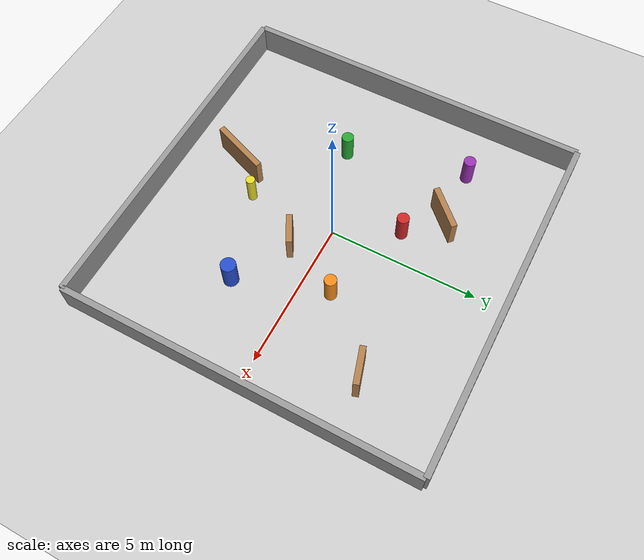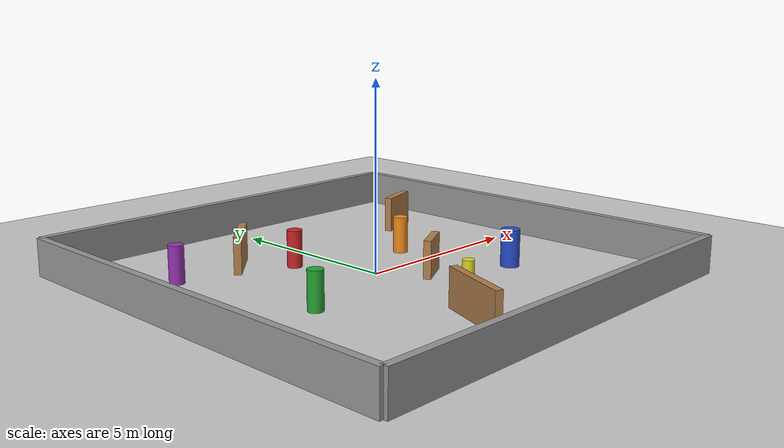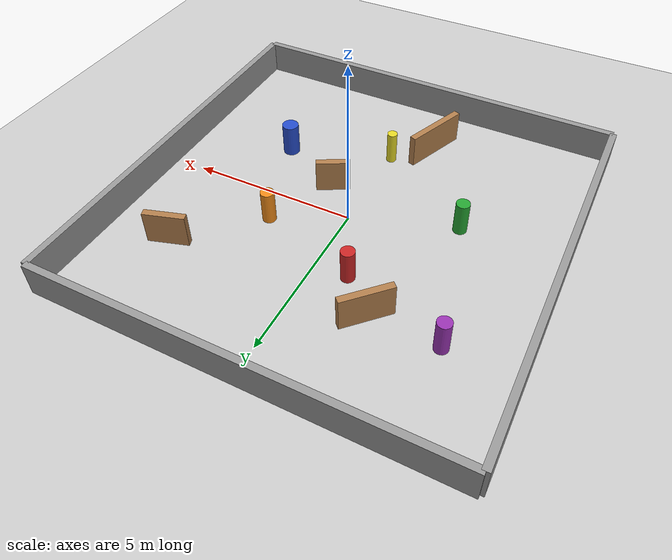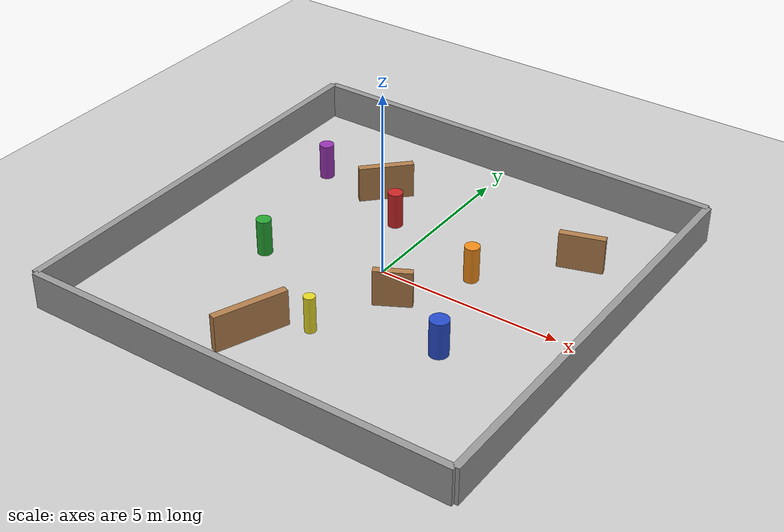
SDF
<?xml version="1.0"?>
<sdf version="1.6">
  <world name="obstacle_course">

    <include><uri>model://ground_plane</uri></include>
    <include><uri>model://sun</uri></include>

    <!-- ── Surrounding arena walls ── -->
    <model name="wall_north"><static>true</static>
      <pose>0 6 0.5 0 0 0</pose>
      <link name="link">
        <collision name="c"><geometry><box><size>12 0.2 1</size></box></geometry></collision>
        <visual name="v"><geometry><box><size>12 0.2 1</size></box></geometry>
        <material><script><name>Gazebo/Grey</name></script></material></visual>
      </link>
    </model>

    <model name="wall_south"><static>true</static>
      <pose>0 -6 0.5 0 0 0</pose>
      <link name="link">
        <collision name="c"><geometry><box><size>12 0.2 1</size></box></geometry></collision>
        <visual name="v"><geometry><box><size>12 0.2 1</size></box></geometry>
        <material><script><name>Gazebo/Grey</name></script></material></visual>
      </link>
    </model>

    <model name="wall_east"><static>true</static>
      <pose>6 0 0.5 0 0 1.5707</pose>
      <link name="link">
        <collision name="c"><geometry><box><size>12 0.2 1</size></box></geometry></collision>
        <visual name="v"><geometry><box><size>12 0.2 1</size></box></geometry>
        <material><script><name>Gazebo/Grey</name></script></material></visual>
      </link>
    </model>

    <model name="wall_west"><static>true</static>
      <pose>-6 0 0.5 0 0 1.5707</pose>
      <link name="link">
        <collision name="c"><geometry><box><size>12 0.2 1</size></box></geometry></collision>
        <visual name="v"><geometry><box><size>12 0.2 1</size></box></geometry>
        <material><script><name>Gazebo/Grey</name></script></material></visual>
      </link>
    </model>

    <!-- ── Cylinder obstacles ── -->
    <model name="obs_cyl_1"><static>true</static>
      <pose>2 1 0.5 0 0 0</pose>
      <link name="link">
        <collision name="c"><geometry><cylinder><radius>0.2</radius><length>1.0</length></cylinder></geometry></collision>
        <visual name="v"><geometry><cylinder><radius>0.2</radius><length>1.0</length></cylinder></geometry>
        <material><script><name>Gazebo/Orange</name></script></material></visual>
      </link>
    </model>

    <model name="obs_cyl_2"><static>true</static>
      <pose>-1 2 0.5 0 0 0</pose>
      <link name="link">
        <collision name="c"><geometry><cylinder><radius>0.2</radius><length>1.0</length></cylinder></geometry></collision>
        <visual name="v"><geometry><cylinder><radius>0.2</radius><length>1.0</length></cylinder></geometry>
        <material><script><name>Gazebo/Red</name></script></material></visual>
      </link>
    </model>

    <model name="obs_cyl_3"><static>true</static>
      <pose>3 -2 0.5 0 0 0</pose>
      <link name="link">
        <collision name="c"><geometry><cylinder><radius>0.25</radius><length>1.0</length></cylinder></geometry></collision>
        <visual name="v"><geometry><cylinder><radius>0.25</radius><length>1.0</length></cylinder></geometry>
        <material><script><name>Gazebo/Blue</name></script></material></visual>
      </link>
    </model>

    <model name="obs_cyl_4"><static>true</static>
      <pose>-3 -1 0.5 0 0 0</pose>
      <link name="link">
        <collision name="c"><geometry><cylinder><radius>0.2</radius><length>1.0</length></cylinder></geometry></collision>
        <visual name="v"><geometry><cylinder><radius>0.2</radius><length>1.0</length></cylinder></geometry>
        <material><script><name>Gazebo/Green</name></script></material></visual>
      </link>
    </model>

    <model name="obs_cyl_5"><static>true</static>
      <pose>0 -3 0.5 0 0 0</pose>
      <link name="link">
        <collision name="c"><geometry><cylinder><radius>0.15</radius><length>1.0</length></cylinder></geometry></collision>
        <visual name="v"><geometry><cylinder><radius>0.15</radius><length>1.0</length></cylinder></geometry>
        <material><script><name>Gazebo/Yellow</name></script></material></visual>
      </link>
    </model>

    <model name="obs_cyl_6"><static>true</static>
      <pose>-4 3 0.5 0 0 0</pose>
      <link name="link">
        <collision name="c"><geometry><cylinder><radius>0.2</radius><length>1.0</length></cylinder></geometry></collision>
        <visual name="v"><geometry><cylinder><radius>0.2</radius><length>1.0</length></cylinder></geometry>
        <material><script><name>Gazebo/Purple</name></script></material></visual>
      </link>
    </model>

    <!-- ── Box obstacles ── -->
    <model name="obs_box_1"><static>true</static>
      <pose>1 -1 0.5 0 0 0.5</pose>
      <link name="link">
        <collision name="c"><geometry><box><size>1.0 0.2 1</size></box></geometry></collision>
        <visual name="v"><geometry><box><size>1.0 0.2 1</size></box></geometry>
        <material><script><name>Gazebo/WoodFloor</name></script></material></visual>
      </link>
    </model>

    <model name="obs_box_2"><static>true</static>
      <pose>-2 3 0.5 0 0 0.8</pose>
      <link name="link">
        <collision name="c"><geometry><box><size>1.5 0.2 1</size></box></geometry></collision>
        <visual name="v"><geometry><box><size>1.5 0.2 1</size></box></geometry>
        <material><script><name>Gazebo/WoodFloor</name></script></material></visual>
      </link>
    </model>

    <model name="obs_box_3"><static>true</static>
      <pose>4 3 0.5 0 0 0.3</pose>
      <link name="link">
        <collision name="c"><geometry><box><size>1.2 0.2 1</size></box></geometry></collision>
        <visual name="v"><geometry><box><size>1.2 0.2 1</size></box></geometry>
        <material><script><name>Gazebo/WoodFloor</name></script></material></visual>
      </link>
    </model>

    <model name="obs_box_4"><static>true</static>
      <pose>-1 -4 0.5 0 0 1.2</pose>
      <link name="link">
        <collision name="c"><geometry><box><size>2.0 0.2 1</size></box></geometry></collision>
        <visual name="v"><geometry><box><size>2.0 0.2 1</size></box></geometry>
        <material><script><name>Gazebo/WoodFloor</name></script></material></visual>
      </link>
    </model>

  </world>
</sdf>
